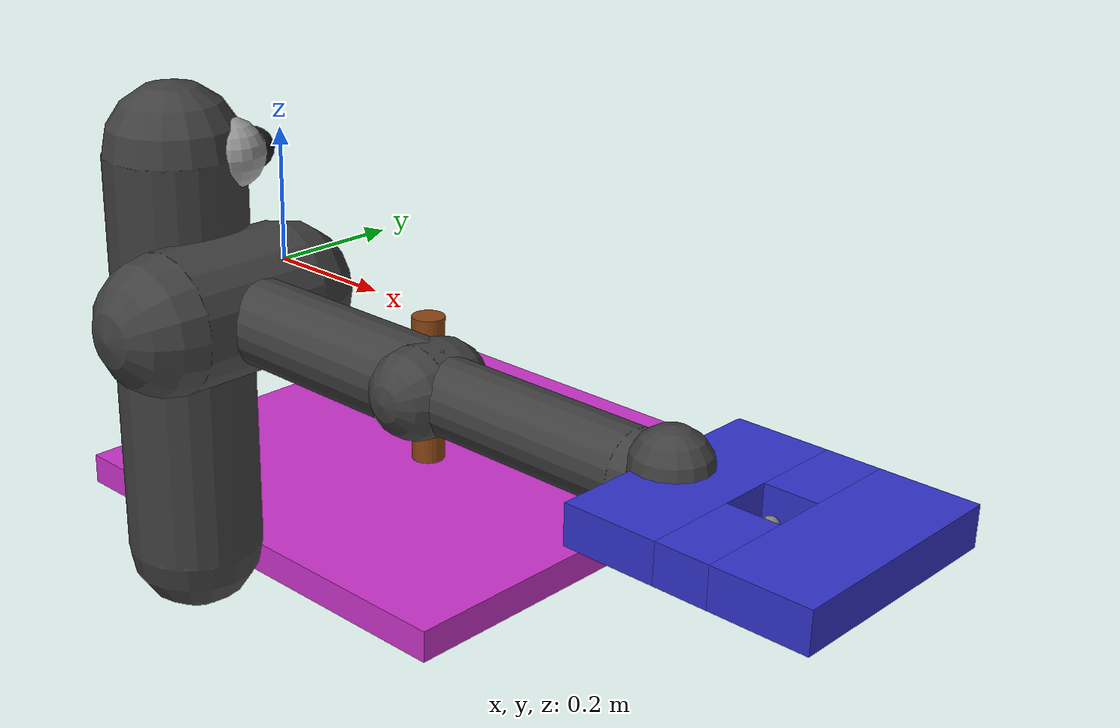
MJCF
<mujoco model="arm3d">

    <compiler angle="radian" coordinate="local" inertiafromgeom="true" />
    <option gravity="0 0 0" integrator="Euler" iterations="20" timestep="0.01" />
    <default>
        <joint armature="0.04" damping="1" limited="true" />
        <geom conaffinity="0" condim="1" contype="0" friction=".5 .1 .1" margin="0.002" />
    </default>
    <visual>
        <headlight ambient="1 1 1" />
    </visual>
    <asset>
        <material name="non-reflect" shininess="0" specular="0" />
    </asset>

    <asset>
        <texture builtin="checker" height="256" rgb1="1 1 1" rgb2="1 1 1" type="skybox" width="256" />
    </asset>

    <worldbody>
        <body name="r_shoulder_pan_link" pos="0 -0.188 0">
            <geom name="e1" pos="-0.06 0.05 0.2" rgba="0.6 0.6 0.6 1" size="0.05" type="sphere" />
            <geom name="e2" pos=" 0.06 0.05 0.2" rgba="0.6 0.6 0.6 1" size="0.05" type="sphere" />
            <geom name="e1p" pos="-0.06 0.09 0.2" rgba="0.1 0.1 0.1 1" size="0.03" type="sphere" />
            <geom name="e2p" pos=" 0.06 0.09 0.2" rgba="0.1 0.1 0.1 1" size="0.03" type="sphere" />
            <geom conaffinity="1" contype="1" fromto="0 0 -0.4 0 0 0.2" name="sp" rgba="0.25 0.25 0.25 1" size="0.1" type="capsule" />
            <joint axis="0 0 1" damping="10.0" name="r_shoulder_pan_joint" pos="0 0 0" range="-2.2854 1.714602" type="hinge" />

            <body name="r_shoulder_lift_link" pos="0.1 0 0">
                <geom conaffinity="1" contype="1" fromto="0 -0.1 0 0 0.1 0" name="sl" rgba="0.25 0.25 0.25 1" size="0.1" type="capsule" />
                <joint axis="0 1 0" damping="10.0" name="r_shoulder_lift_joint" pos="0 0 0" range="-0.5236 1.3963" type="hinge" />

                <body name="r_upper_arm_roll_link" pos="0 0 0">
                    <geom fromto="-0.1 0 0 0.1 0 0" name="uar" rgba="0.25 0.25 0.25 1" size="0.02" type="capsule" />
                    <joint axis="1 0 0" damping="0.1" name="r_upper_arm_roll_joint" pos="0 0 0" range="-3.9 0.8" type="hinge" />

                    <body name="r_upper_arm_link" pos="0 0 0">
                        <geom conaffinity="1" contype="1" fromto="0 0 0 0.4 0 0" name="ua" rgba="0.25 0.25 0.25 1" size="0.06" type="capsule" />

                        <body name="r_elbow_flex_link" pos="0.4 0 0">
                            <geom fromto="0 -0.02 0 0.0 0.02 0" name="ef" rgba="0.25 0.25 0.25 1" size="0.06" type="capsule" />
                            <joint axis="0 1 0" damping="1.0" name="r_elbow_flex_joint" pos="0 0 0" range="-2.3213 0" type="hinge" />

                            <body name="r_forearm_roll_link" pos="0 0 0">
                                <geom fromto="-0.1 0 0 0.1 0 0" name="fr" rgba="0.25 0.25 0.25 1" size="0.02" type="capsule" />
                                <joint axis="1 0 0" damping=".1" name="r_forearm_roll_joint" pos="0 0 0" range="-3.15 3.15" type="hinge" />

                                <body name="r_forearm_link" pos="0 0 0">
                                    <geom conaffinity="1" contype="1" fromto="0 0 0 0.321 0 0" name="fa" rgba="0.25 0.25 0.25 1" size="0.05" type="capsule" />

                                    <body name="r_wrist_flex_link" pos="0.321 0 0">
                                        <geom fromto="0 -0.02 0 0 0.02 0" name="wf" rgba="0.25 0.25 0.25 1" size="0.01" type="capsule" />
                                        <joint axis="0 1 0" damping=".1" name="r_wrist_flex_joint" pos="0 0 0" range="-2.094 0" type="hinge" />

                                        <body name="r_wrist_roll_link" pos="0 0 0">
                                            <geom fromto="-0.02 0 0 0.02 0 0" name="wr" rgba="0.25 0.25 0.25 1" size="0.01" type="capsule" />
                                            <joint axis="1 0 0" damping="0.1" name="r_wrist_roll_joint" pos="0 0 0" range="-3.15 3.15" type="hinge" />

                                            <body name="r_gripper_palm_link" pos="0 0 0">
                                                <geom fromto="0.05 0 -0.02 0.05 0 0.02" name="pl" rgba="0.25 0.25 0.25 1" size="0.05" type="capsule" />

                                                <body name="r_gripper_tool_frame" pos="0.18 0 0">
                                                    <site name="disc_center" pos="0 0 0" size="0.01" />

                                                    <body name="tool" pos="0 0 0">
                                                        <geom conaffinity="1" contype="1" name="wc1" pos="0.0915 0 0" rgba="0.2 0.2 0.8 1" size="0.0585 0.15 0.025" type="box" />
                                                        <geom conaffinity="1" contype="1" name="wc2" pos="-0.0915 0 0" rgba="0.2 0.2 0.8 1" size="0.0585 0.15 0.025" type="box" />
                                                        <geom conaffinity="1" contype="1" name="wc3" pos="0.0 0.0915 0" rgba="0.2 0.2 0.8 1" size="0.033 0.0585 0.025" type="box" />
                                                        <geom conaffinity="1" contype="1" name="wc4" pos="0.0 -0.0915 0" rgba="0.2 0.2 0.8 1" size="0.033 0.0585 0.025" type="box" />
                                                    </body>
                                                </body>
                                            </body>
                                        </body>
                                    </body>
                                </body>
                            </body>
                        </body>
                    </body>
                </body>
            </body>
        </body>

        <body name="w2" pos="0 0.3 -0.45">

            <site name="peg_bottom" pos="0 0 0.05" size="0.01" />

            <geom conaffinity="1" contype="1" name="w2" rgba="0.8 0.2 0.8 1" size="0.4 0.4 0.025" type="box" />

            <body name="peg" pos="0.0 0.0 0.0">

                <geom conaffinity="1" contype="1" density="2000000000" fromto="0 0 0 0 0 0.28" name="peg_geom" rgba="0.545098 0.270588 0.07450987 1" size="0.028" type="cylinder" />
                <joint axis="1 0 0" damping="0.5" name="slider1" pos="0 0 0" range="-0.2 0.2" type="slide" />
                <joint axis="0 1 0" damping="0.5" name="slider2" pos="0 0 0" range="-0.2 0.2" type="slide" />

            </body>
        </body>

    </worldbody>

    <actuator>
        <motor ctrllimited="true" ctrlrange="-1.0 1.0" joint="r_shoulder_pan_joint" />
        <motor ctrllimited="true" ctrlrange="-1.0 1.0" joint="r_shoulder_lift_joint" />
        <motor ctrllimited="true" ctrlrange="-1.0 1.0" joint="r_upper_arm_roll_joint" />
        <motor ctrllimited="true" ctrlrange="-1.0 1.0" joint="r_elbow_flex_joint" />
        <motor ctrllimited="true" ctrlrange="-1.0 1.0" joint="r_forearm_roll_joint" />
        <motor ctrllimited="true" ctrlrange="-1.0 1.0" joint="r_wrist_flex_joint" />
        <motor ctrllimited="true" ctrlrange="-1.0 1.0" joint="r_wrist_roll_joint" />
    </actuator>

</mujoco>
